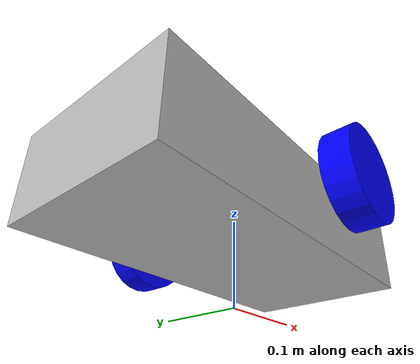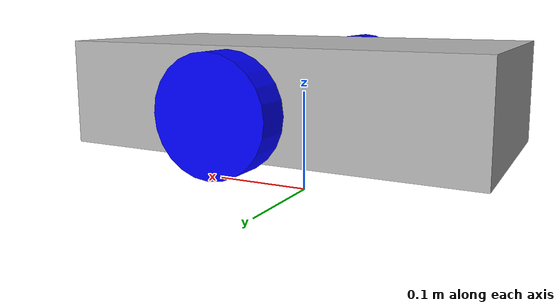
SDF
<?xml version="1.0" ?>
<sdf version="1.8">
  <model name="simple_diff_drive">
    <pose>0 0 0.1 0 0 0</pose>

    <link name="base_link">
      <inertial>
        <mass>1.0</mass>
        <inertia>
          <ixx>0.1</ixx>
          <iyy>0.1</iyy>
          <izz>0.1</izz>
        </inertia>
      </inertial>
      <collision name="collision">
        <geometry>
          <box>
            <size>0.4 0.2 0.1</size>
          </box>
        </geometry>
      </collision>
      <visual name="visual">
        <geometry>
          <box>
            <size>0.4 0.2 0.1</size>
          </box>
        </geometry>
      </visual>
    </link>

    <link name="left_wheel">
      <pose>0 0.15 0 -1.5707 0 0</pose>
      <inertial>
        <mass>0.2</mass>
        <inertia>
          <ixx>0.0001</ixx>
          <iyy>0.0001</iyy>
          <izz>0.0001</izz>
        </inertia>
      </inertial>
      <collision name="collision">
        <geometry>
          <cylinder>
            <radius>0.05</radius>
            <length>0.03</length>
          </cylinder>
        </geometry>
      </collision>
      <visual name="visual">
        <geometry>
          <cylinder>
            <radius>0.05</radius>
            <length>0.03</length>
          </cylinder>
        </geometry>
        <material>
          <ambient>0 0 1 1</ambient>
        </material>
      </visual>
    </link>

    <link name="right_wheel">
      <pose>0 -0.15 0 -1.5707 0 0</pose>
      <inertial>
        <mass>0.2</mass>
        <inertia>
          <ixx>0.0001</ixx>
          <iyy>0.0001</iyy>
          <izz>0.0001</izz>
        </inertia>
      </inertial>
      <collision name="collision">
        <geometry>
          <cylinder>
            <radius>0.05</radius>
            <length>0.03</length>
          </cylinder>
        </geometry>
      </collision>
      <visual name="visual">
        <geometry>
          <cylinder>
            <radius>0.05</radius>
            <length>0.03</length>
          </cylinder>
        </geometry>
        <material>
          <ambient>0 0 1 1</ambient>
        </material>
      </visual>
    </link>

    <joint name="left_wheel_joint" type="revolute">
      <parent>base_link</parent>
      <child>left_wheel</child>
      <axis>
        <xyz>0 0 1</xyz>
      </axis>
    </joint>

    <joint name="right_wheel_joint" type="revolute">
      <parent>base_link</parent>
      <child>right_wheel</child>
      <axis>
        <xyz>0 0 1</xyz>
      </axis>
    </joint>

    <plugin
      filename="libignition-gazebo6-diff-drive-system.so"
      name="ignition::gazebo::systems::DiffDrive">
      <left_joint>left_wheel_joint</left_joint>
      <right_joint>right_wheel_joint</right_joint>
      <wheel_separation>0.3</wheel_separation>
      <wheel_radius>0.05</wheel_radius>
    </plugin>

  </model>
</sdf>
